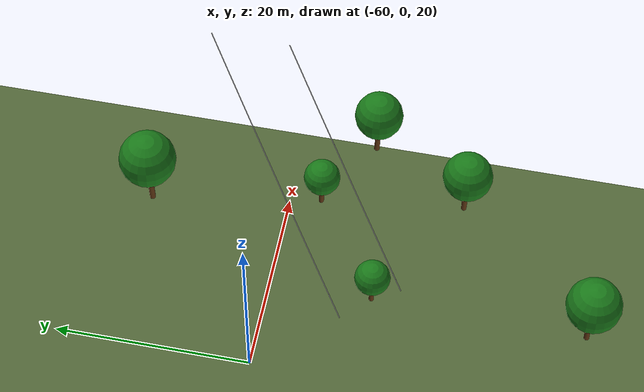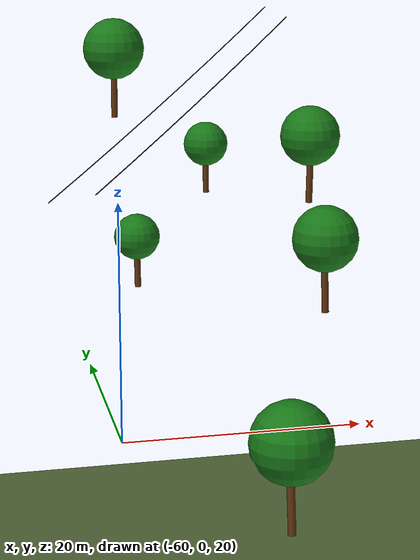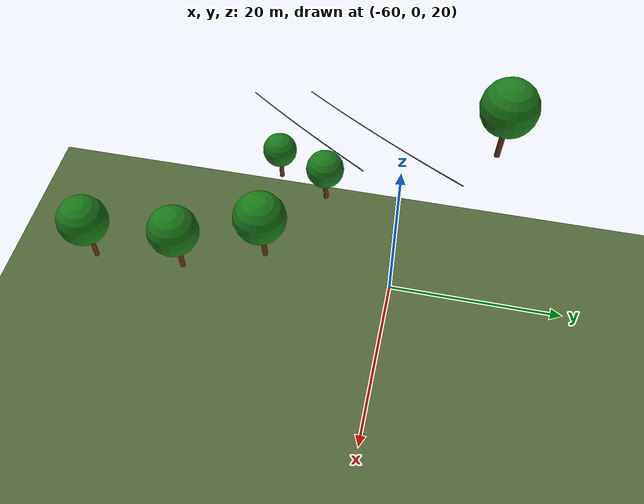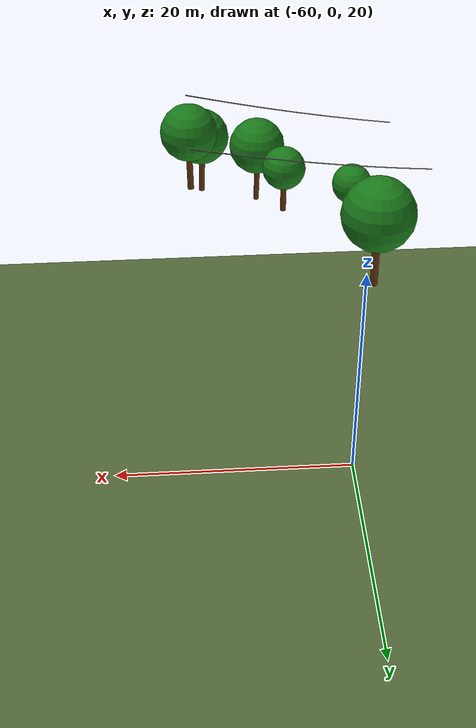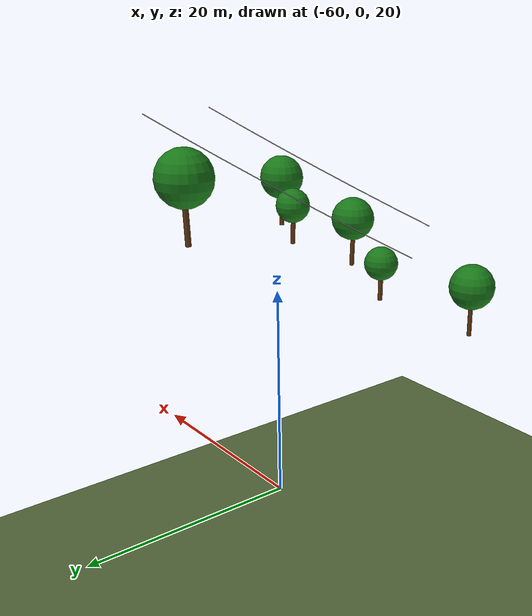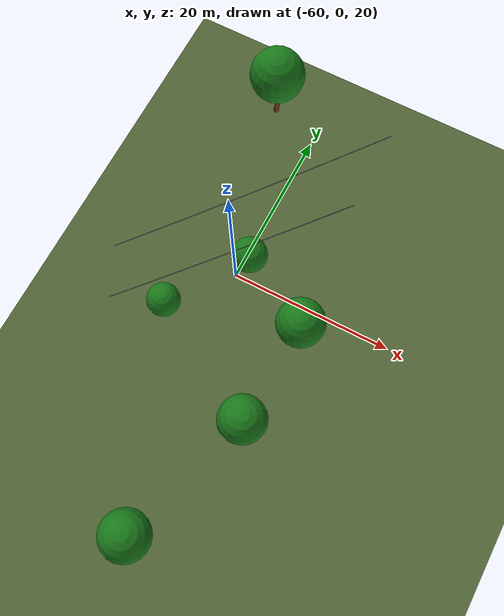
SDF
<sdf version="1.9">
 <world name="power_line_inspection">
  <model name="ground_plane">
   <static>true</static>
   <pose>0 0 -0.01 0 0 0</pose>
   <link name="link">
    <collision name="collision">
     <geometry><plane><normal>0 0 1</normal><size>600 600</size></plane></geometry>
     <surface><friction><ode><mu>1.0</mu><mu2>1.0</mu2></ode></friction></surface>
    </collision>
    <visual name="visual">
     <cast_shadows>false</cast_shadows>
     <geometry><plane><normal>0 0 1</normal><size>600 600</size></plane></geometry>
     <material>
      <ambient>0.28 0.35 0.18 1</ambient>
      <diffuse>0.32 0.40 0.22 1</diffuse>
      <specular>0.02 0.02 0.02 1</specular>
     </material>
    </visual>
   </link>
  </model>
  <model name="wire_L_s19">
   <static>true</static>
   <pose>-62.256 -13.792 44.986 -0.94149 0.79816 -0.42280</pose>
   <link name="link">
    <visual name="v">
     <geometry><cylinder><radius>0.04</radius><length>3.8715</length></cylinder></geometry>
     <material><ambient>0.08 0.08 0.08 1</ambient><diffuse>0.08 0.08 0.08 1</diffuse></material>
    </visual>
    <collision name="c">
     <geometry><cylinder><radius>0.04</radius><length>3.8715</length></cylinder></geometry>
    </collision>
   </link>
  </model>
  <model name="wire_L_s20">
   <static>true</static>
   <pose>-59.484 -11.607 46.599 -0.92850 0.79336 -0.41352</pose>
   <link name="link">
    <visual name="v">
     <geometry><cylinder><radius>0.04</radius><length>3.8897</length></cylinder></geometry>
     <material><ambient>0.08 0.08 0.08 1</ambient><diffuse>0.08 0.08 0.08 1</diffuse></material>
    </visual>
    <collision name="c">
     <geometry><cylinder><radius>0.04</radius><length>3.8897</length></cylinder></geometry>
    </collision>
   </link>
  </model>
  <model name="wire_L_s21">
   <static>true</static>
   <pose>-56.712 -9.423 48.255 -0.91576 0.78853 -0.40446</pose>
   <link name="link">
    <visual name="v">
     <geometry><cylinder><radius>0.04</radius><length>3.9084</length></cylinder></geometry>
     <material><ambient>0.08 0.08 0.08 1</ambient><diffuse>0.08 0.08 0.08 1</diffuse></material>
    </visual>
    <collision name="c">
     <geometry><cylinder><radius>0.04</radius><length>3.9084</length></cylinder></geometry>
    </collision>
   </link>
  </model>
  <model name="wire_L_s22">
   <static>true</static>
   <pose>-53.939 -7.238 49.955 -0.90326 0.78367 -0.39562</pose>
   <link name="link">
    <visual name="v">
     <geometry><cylinder><radius>0.04</radius><length>3.9274</length></cylinder></geometry>
     <material><ambient>0.08 0.08 0.08 1</ambient><diffuse>0.08 0.08 0.08 1</diffuse></material>
    </visual>
    <collision name="c">
     <geometry><cylinder><radius>0.04</radius><length>3.9274</length></cylinder></geometry>
    </collision>
   </link>
  </model>
  <model name="wire_L_s23">
   <static>true</static>
   <pose>-51.167 -5.053 51.699 -0.89100 0.77878 -0.38699</pose>
   <link name="link">
    <visual name="v">
     <geometry><cylinder><radius>0.04</radius><length>3.9468</length></cylinder></geometry>
     <material><ambient>0.08 0.08 0.08 1</ambient><diffuse>0.08 0.08 0.08 1</diffuse></material>
    </visual>
    <collision name="c">
     <geometry><cylinder><radius>0.04</radius><length>3.9468</length></cylinder></geometry>
    </collision>
   </link>
  </model>
  <model name="wire_L_s24">
   <static>true</static>
   <pose>-48.395 -2.868 53.487 -0.87898 0.77386 -0.37856</pose>
   <link name="link">
    <visual name="v">
     <geometry><cylinder><radius>0.04</radius><length>3.9666</length></cylinder></geometry>
     <material><ambient>0.08 0.08 0.08 1</ambient><diffuse>0.08 0.08 0.08 1</diffuse></material>
    </visual>
    <collision name="c">
     <geometry><cylinder><radius>0.04</radius><length>3.9666</length></cylinder></geometry>
    </collision>
   </link>
  </model>
  <model name="wire_R_s18">
   <static>true</static>
   <pose>-65.028 -8.977 43.417 -0.95473 0.80291 -0.43231</pose>
   <link name="link">
    <visual name="v">
     <geometry><cylinder><radius>0.04</radius><length>3.8537</length></cylinder></geometry>
     <material><ambient>0.08 0.08 0.08 1</ambient><diffuse>0.08 0.08 0.08 1</diffuse></material>
    </visual>
    <collision name="c">
     <geometry><cylinder><radius>0.04</radius><length>3.8537</length></cylinder></geometry>
    </collision>
   </link>
  </model>
  <model name="wire_R_s19">
   <static>true</static>
   <pose>-62.256 -6.792 44.986 -0.94149 0.79816 -0.42280</pose>
   <link name="link">
    <visual name="v">
     <geometry><cylinder><radius>0.04</radius><length>3.8715</length></cylinder></geometry>
     <material><ambient>0.08 0.08 0.08 1</ambient><diffuse>0.08 0.08 0.08 1</diffuse></material>
    </visual>
    <collision name="c">
     <geometry><cylinder><radius>0.04</radius><length>3.8715</length></cylinder></geometry>
    </collision>
   </link>
  </model>
  <model name="wire_R_s20">
   <static>true</static>
   <pose>-59.484 -4.607 46.599 -0.92850 0.79336 -0.41352</pose>
   <link name="link">
    <visual name="v">
     <geometry><cylinder><radius>0.04</radius><length>3.8897</length></cylinder></geometry>
     <material><ambient>0.08 0.08 0.08 1</ambient><diffuse>0.08 0.08 0.08 1</diffuse></material>
    </visual>
    <collision name="c">
     <geometry><cylinder><radius>0.04</radius><length>3.8897</length></cylinder></geometry>
    </collision>
   </link>
  </model>
  <model name="wire_R_s21">
   <static>true</static>
   <pose>-56.712 -2.423 48.255 -0.91576 0.78853 -0.40446</pose>
   <link name="link">
    <visual name="v">
     <geometry><cylinder><radius>0.04</radius><length>3.9084</length></cylinder></geometry>
     <material><ambient>0.08 0.08 0.08 1</ambient><diffuse>0.08 0.08 0.08 1</diffuse></material>
    </visual>
    <collision name="c">
     <geometry><cylinder><radius>0.04</radius><length>3.9084</length></cylinder></geometry>
    </collision>
   </link>
  </model>
  <model name="wire_R_s22">
   <static>true</static>
   <pose>-53.939 -0.238 49.955 -0.90326 0.78367 -0.39562</pose>
   <link name="link">
    <visual name="v">
     <geometry><cylinder><radius>0.04</radius><length>3.9274</length></cylinder></geometry>
     <material><ambient>0.08 0.08 0.08 1</ambient><diffuse>0.08 0.08 0.08 1</diffuse></material>
    </visual>
    <collision name="c">
     <geometry><cylinder><radius>0.04</radius><length>3.9274</length></cylinder></geometry>
    </collision>
   </link>
  </model>
  <model name="wire_R_s23">
   <static>true</static>
   <pose>-51.167 1.947 51.699 -0.89100 0.77878 -0.38699</pose>
   <link name="link">
    <visual name="v">
     <geometry><cylinder><radius>0.04</radius><length>3.9468</length></cylinder></geometry>
     <material><ambient>0.08 0.08 0.08 1</ambient><diffuse>0.08 0.08 0.08 1</diffuse></material>
    </visual>
    <collision name="c">
     <geometry><cylinder><radius>0.04</radius><length>3.9468</length></cylinder></geometry>
    </collision>
   </link>
  </model>
  <model name="wire_R_s24">
   <static>true</static>
   <pose>-48.395 4.132 53.487 -0.87898 0.77386 -0.37856</pose>
   <link name="link">
    <visual name="v">
     <geometry><cylinder><radius>0.04</radius><length>3.9666</length></cylinder></geometry>
     <material><ambient>0.08 0.08 0.08 1</ambient><diffuse>0.08 0.08 0.08 1</diffuse></material>
    </visual>
    <collision name="c">
     <geometry><cylinder><radius>0.04</radius><length>3.9666</length></cylinder></geometry>
    </collision>
   </link>
  </model>
  <model name="tree_04">
   <static>true</static>
   <pose>-47.24 -10.01 41.73 0 0 4.90</pose>
   <link name="link">
    <visual name="trunk">
     <pose>0 0 1.888 -0.010 0.032 0</pose>
     <geometry><cylinder><radius>0.242</radius><length>3.776</length></cylinder></geometry>
     <material><ambient>0.32 0.18 0.05 1</ambient><diffuse>0.38 0.21 0.07 1</diffuse></material>
    </visual>
    <collision name="trunk_c">
     <pose>0 0 1.888 0 0 0</pose>
     <geometry><cylinder><radius>0.242</radius><length>3.776</length></cylinder></geometry>
    </collision>
    <visual name="canopy">
     <pose>0 0 4.985 0 0 0</pose>
     <geometry><sphere><radius>2.197</radius></sphere></geometry>
     <material><ambient>0.07 0.38 0.07 1</ambient><diffuse>0.10 0.48 0.10 1</diffuse></material>
    </visual>
    <collision name="canopy_c">
     <pose>0 0 4.985 0 0 0</pose>
     <geometry><sphere><radius>2.197</radius></sphere></geometry>
    </collision>
   </link>
  </model>
  <model name="tree_08">
   <static>true</static>
   <pose>-60.39 -11.94 36.66 0 0 5.83</pose>
   <link name="link">
    <visual name="trunk">
     <pose>0 0 1.393 0.010 -0.010 0</pose>
     <geometry><cylinder><radius>0.221</radius><length>2.787</length></cylinder></geometry>
     <material><ambient>0.32 0.18 0.05 1</ambient><diffuse>0.38 0.21 0.07 1</diffuse></material>
    </visual>
    <collision name="trunk_c">
     <pose>0 0 1.393 0 0 0</pose>
     <geometry><cylinder><radius>0.221</radius><length>2.787</length></cylinder></geometry>
    </collision>
    <visual name="canopy">
     <pose>0 0 3.678 0 0 0</pose>
     <geometry><sphere><radius>1.621</radius></sphere></geometry>
     <material><ambient>0.07 0.38 0.07 1</ambient><diffuse>0.10 0.48 0.10 1</diffuse></material>
    </visual>
    <collision name="canopy_c">
     <pose>0 0 3.678 0 0 0</pose>
     <geometry><sphere><radius>1.621</radius></sphere></geometry>
    </collision>
   </link>
  </model>
  <model name="tree_11">
   <static>true</static>
   <pose>-58.96 8.23 45.32 0 0 1.17</pose>
   <link name="link">
    <visual name="trunk">
     <pose>0 0 2.132 0.001 0.031 0</pose>
     <geometry><cylinder><radius>0.253</radius><length>4.265</length></cylinder></geometry>
     <material><ambient>0.32 0.18 0.05 1</ambient><diffuse>0.38 0.21 0.07 1</diffuse></material>
    </visual>
    <collision name="trunk_c">
     <pose>0 0 2.132 0 0 0</pose>
     <geometry><cylinder><radius>0.253</radius><length>4.265</length></cylinder></geometry>
    </collision>
    <visual name="canopy">
     <pose>0 0 5.629 0 0 0</pose>
     <geometry><sphere><radius>2.481</radius></sphere></geometry>
     <material><ambient>0.07 0.38 0.07 1</ambient><diffuse>0.10 0.48 0.10 1</diffuse></material>
    </visual>
    <collision name="canopy_c">
     <pose>0 0 5.629 0 0 0</pose>
     <geometry><sphere><radius>2.481</radius></sphere></geometry>
    </collision>
   </link>
  </model>
  <model name="tree_12">
   <static>true</static>
   <pose>-54.15 -32.18 25.95 0 0 1.08</pose>
   <link name="link">
    <visual name="trunk">
     <pose>0 0 2.312 -0.038 0.017 0</pose>
     <geometry><cylinder><radius>0.261</radius><length>4.624</length></cylinder></geometry>
     <material><ambient>0.32 0.18 0.05 1</ambient><diffuse>0.38 0.21 0.07 1</diffuse></material>
    </visual>
    <collision name="trunk_c">
     <pose>0 0 2.312 0 0 0</pose>
     <geometry><cylinder><radius>0.261</radius><length>4.624</length></cylinder></geometry>
    </collision>
    <visual name="canopy">
     <pose>0 0 6.103 0 0 0</pose>
     <geometry><sphere><radius>2.690</radius></sphere></geometry>
     <material><ambient>0.07 0.38 0.07 1</ambient><diffuse>0.10 0.48 0.10 1</diffuse></material>
    </visual>
    <collision name="canopy_c">
     <pose>0 0 6.103 0 0 0</pose>
     <geometry><sphere><radius>2.690</radius></sphere></geometry>
    </collision>
   </link>
  </model>
  <model name="tree_13">
   <static>true</static>
   <pose>-48.40 -18.69 35.96 0 0 6.15</pose>
   <link name="link">
    <visual name="trunk">
     <pose>0 0 1.993 0.014 -0.033 0</pose>
     <geometry><cylinder><radius>0.247</radius><length>3.986</length></cylinder></geometry>
     <material><ambient>0.32 0.18 0.05 1</ambient><diffuse>0.38 0.21 0.07 1</diffuse></material>
    </visual>
    <collision name="trunk_c">
     <pose>0 0 1.993 0 0 0</pose>
     <geometry><cylinder><radius>0.247</radius><length>3.986</length></cylinder></geometry>
    </collision>
    <visual name="canopy">
     <pose>0 0 5.262 0 0 0</pose>
     <geometry><sphere><radius>2.319</radius></sphere></geometry>
     <material><ambient>0.07 0.38 0.07 1</ambient><diffuse>0.10 0.48 0.10 1</diffuse></material>
    </visual>
    <collision name="canopy_c">
     <pose>0 0 5.262 0 0 0</pose>
     <geometry><sphere><radius>2.319</radius></sphere></geometry>
    </collision>
   </link>
  </model>
  <model name="tree_16">
   <static>true</static>
   <pose>-54.23 -6.13 41.98 0 0 5.51</pose>
   <link name="link">
    <visual name="trunk">
     <pose>0 0 1.397 0.034 0.014 0</pose>
     <geometry><cylinder><radius>0.221</radius><length>2.795</length></cylinder></geometry>
     <material><ambient>0.32 0.18 0.05 1</ambient><diffuse>0.38 0.21 0.07 1</diffuse></material>
    </visual>
    <collision name="trunk_c">
     <pose>0 0 1.397 0 0 0</pose>
     <geometry><cylinder><radius>0.221</radius><length>2.795</length></cylinder></geometry>
    </collision>
    <visual name="canopy">
     <pose>0 0 3.689 0 0 0</pose>
     <geometry><sphere><radius>1.626</radius></sphere></geometry>
     <material><ambient>0.07 0.38 0.07 1</ambient><diffuse>0.10 0.48 0.10 1</diffuse></material>
    </visual>
    <collision name="canopy_c">
     <pose>0 0 3.689 0 0 0</pose>
     <geometry><sphere><radius>1.626</radius></sphere></geometry>
    </collision>
   </link>
  </model>
 </world>
</sdf>
